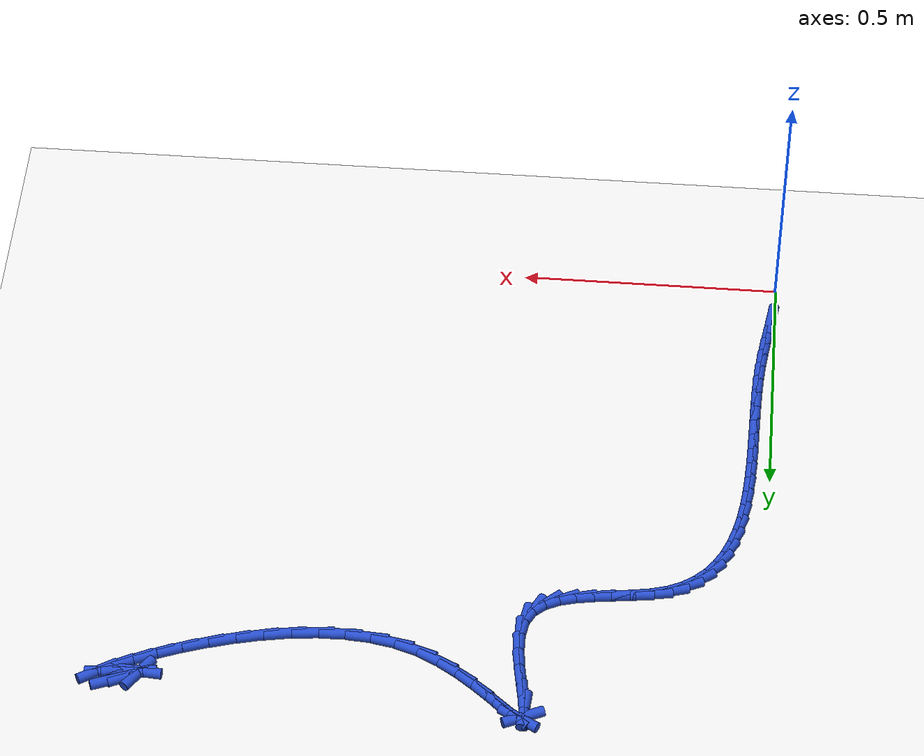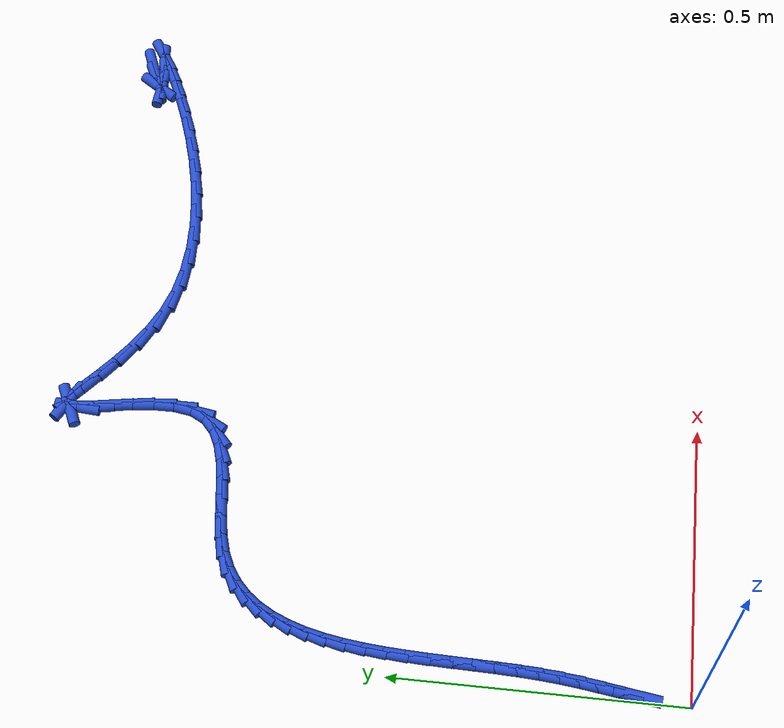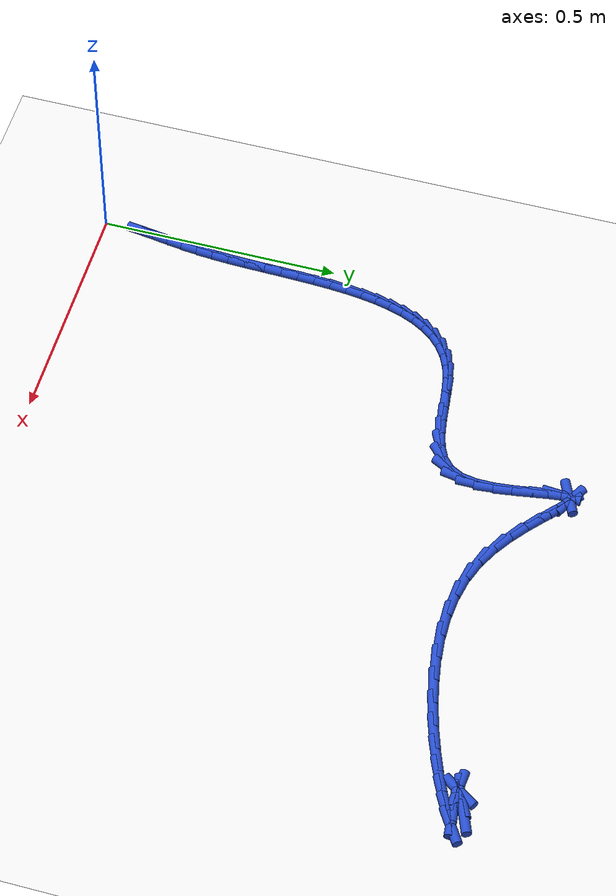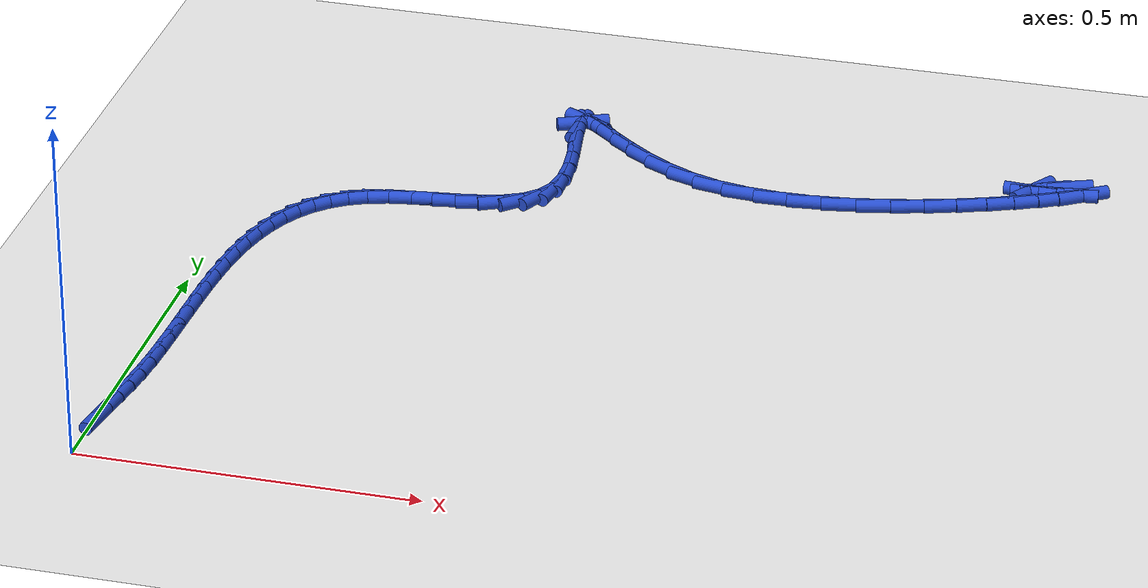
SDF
<sdf version="1.6">
 <world name="default">
  <model name="ground_plane">
   <static>1</static>
   <link name="link">
    <collision name="collision">
     <geometry><plane><normal>0 0 1</normal><size>100 100</size></plane></geometry>
     <surface><friction><ode><mu>100</mu><mu2>50</mu2></ode></friction></surface>
    </collision>
    <visual name="visual">
     <cast_shadows>0</cast_shadows>
     <geometry><plane><normal>0 0 1</normal><size>100 100</size></plane></geometry>
     <material>
      <script><uri>file://media/materials/scripts/gazebo.material</uri><name>Gazebo/WhiteGlow</name></script>
     </material>
    </visual>
   </link>
  </model>
  <model name="line">
   <link name="link_3">
    <pose>0.008167238286608368 0.08972064462820215 0.01 0 1.57 1.4271717780435933</pose>
    <collision name="collision">
     <geometry><cylinder><radius>0.01</radius><length>0.08</length></cylinder></geometry>
    </collision>
    <visual name="visual">
     <material>
      <script><name>Gazebo/Blue</name><uri>file://media/materials/scripts/gazebo.material</uri></script>
     </material>
     <geometry><cylinder><radius>0.01</radius><length>0.08</length></cylinder></geometry>
    </visual>
   </link>
   <link name="link_4">
    <pose>0.012558238925643204 0.12008290886443686 0.01 0 1.57 1.4232345956230243</pose>
    <collision name="collision">
     <geometry><cylinder><radius>0.01</radius><length>0.08</length></cylinder></geometry>
    </collision>
    <visual name="visual">
     <material>
      <script><name>Gazebo/Blue</name><uri>file://media/materials/scripts/gazebo.material</uri></script>
     </material>
     <geometry><cylinder><radius>0.01</radius><length>0.08</length></cylinder></geometry>
    </visual>
   </link>
   <link name="link_5">
    <pose>0.017158175630050312 0.15102928668816304 0.01 0 1.57 1.4320263609322825</pose>
    <collision name="collision">
     <geometry><cylinder><radius>0.01</radius><length>0.08</length></cylinder></geometry>
    </collision>
    <visual name="visual">
     <material>
      <script><name>Gazebo/Blue</name><uri>file://media/materials/scripts/gazebo.material</uri></script>
     </material>
     <geometry><cylinder><radius>0.01</radius><length>0.08</length></cylinder></geometry>
    </visual>
   </link>
   <link name="link_6">
    <pose>0.021591833676003463 0.18277363144382552 0.01 0 1.57 1.4525284898363768</pose>
    <collision name="collision">
     <geometry><cylinder><radius>0.01</radius><length>0.08</length></cylinder></geometry>
    </collision>
    <visual name="visual">
     <material>
      <script><name>Gazebo/Blue</name><uri>file://media/materials/scripts/gazebo.material</uri></script>
     </material>
     <geometry><cylinder><radius>0.01</radius><length>0.08</length></cylinder></geometry>
    </visual>
   </link>
   <link name="link_7">
    <pose>0.025483998339676395 0.21552979647586884 0.01 0 1.57 1.48289890299912</pose>
    <collision name="collision">
     <geometry><cylinder><radius>0.01</radius><length>0.08</length></cylinder></geometry>
    </collision>
    <visual name="visual">
     <material>
      <script><name>Gazebo/Blue</name><uri>file://media/materials/scripts/gazebo.material</uri></script>
     </material>
     <geometry><cylinder><radius>0.01</radius><length>0.08</length></cylinder></geometry>
    </visual>
   </link>
   <link name="link_8">
    <pose>0.028477421534843825 0.24949791605129953 0.01 0 1.57 1.5120531029433644</pose>
    <collision name="collision">
     <geometry><cylinder><radius>0.01</radius><length>0.08</length></cylinder></geometry>
    </collision>
    <visual name="visual">
     <material>
      <script><name>Gazebo/Blue</name><uri>file://media/materials/scripts/gazebo.material</uri></script>
     </material>
     <geometry><cylinder><radius>0.01</radius><length>0.08</length></cylinder></geometry>
    </visual>
   </link>
   <link name="link_9">
    <pose>0.03054340856325931 0.28462724558753594 0.01 0 1.57 1.5320240932115652</pose>
    <collision name="collision">
     <geometry><cylinder><radius>0.01</radius><length>0.08</length></cylinder></geometry>
    </collision>
    <visual name="visual">
     <material>
      <script><name>Gazebo/Blue</name><uri>file://media/materials/scripts/gazebo.material</uri></script>
     </material>
     <geometry><cylinder><radius>0.01</radius><length>0.08</length></cylinder></geometry>
    </visual>
   </link>
   <link name="link_10">
    <pose>0.031940696900608 0.32064756124605476 0.01 0 1.57 1.543587007439992</pose>
    <collision name="collision">
     <geometry><cylinder><radius>0.01</radius><length>0.08</length></cylinder></geometry>
    </collision>
    <visual name="visual">
     <material>
      <script><name>Gazebo/Blue</name><uri>file://media/materials/scripts/gazebo.material</uri></script>
     </material>
     <geometry><cylinder><radius>0.01</radius><length>0.08</length></cylinder></geometry>
    </visual>
   </link>
   <link name="link_11">
    <pose>0.03293772029558363 0.35728123524758354 0.01 0 1.57 1.547397672989311</pose>
    <collision name="collision">
     <geometry><cylinder><radius>0.01</radius><length>0.08</length></cylinder></geometry>
    </collision>
    <visual name="visual">
     <material>
      <script><name>Gazebo/Blue</name><uri>file://media/materials/scripts/gazebo.material</uri></script>
     </material>
     <geometry><cylinder><radius>0.01</radius><length>0.08</length></cylinder></geometry>
    </visual>
   </link>
   <link name="link_12">
    <pose>0.033802912496879944 0.3942506398128497 0.01 0 1.57 1.543747505559048</pose>
    <collision name="collision">
     <geometry><cylinder><radius>0.01</radius><length>0.08</length></cylinder></geometry>
    </collision>
    <visual name="visual">
     <material>
      <script><name>Gazebo/Blue</name><uri>file://media/materials/scripts/gazebo.material</uri></script>
     </material>
     <geometry><cylinder><radius>0.01</radius><length>0.08</length></cylinder></geometry>
    </visual>
   </link>
   <link name="link_13">
    <pose>0.03480470725319068 0.4312781471625806 0.01 0 1.57 1.5325941075325964</pose>
    <collision name="collision">
     <geometry><cylinder><radius>0.01</radius><length>0.08</length></cylinder></geometry>
    </collision>
    <visual name="visual">
     <material>
      <script><name>Gazebo/Blue</name><uri>file://media/materials/scripts/gazebo.material</uri></script>
     </material>
     <geometry><cylinder><radius>0.01</radius><length>0.08</length></cylinder></geometry>
    </visual>
   </link>
   <link name="link_14">
    <pose>0.03621153831320953 0.46808612951750345 0.01 0 1.57 1.513567407996557</pose>
    <collision name="collision">
     <geometry><cylinder><radius>0.01</radius><length>0.08</length></cylinder></geometry>
    </collision>
    <visual name="visual">
     <material>
      <script><name>Gazebo/Blue</name><uri>file://media/materials/scripts/gazebo.material</uri></script>
     </material>
     <geometry><cylinder><radius>0.01</radius><length>0.08</length></cylinder></geometry>
    </visual>
   </link>
   <link name="link_15">
    <pose>0.03829183942563027 0.5043969590983457 0.01 0 1.57 1.485954312328354</pose>
    <collision name="collision">
     <geometry><cylinder><radius>0.01</radius><length>0.08</length></cylinder></geometry>
    </collision>
    <visual name="visual">
     <material>
      <script><name>Gazebo/Blue</name><uri>file://media/materials/scripts/gazebo.material</uri></script>
     </material>
     <geometry><cylinder><radius>0.01</radius><length>0.08</length></cylinder></geometry>
    </visual>
   </link>
   <link name="link_16">
    <pose>0.041314044339146594 0.5399330081258348 0.01 0 1.57 1.4486665955391353</pose>
    <collision name="collision">
     <geometry><cylinder><radius>0.01</radius><length>0.08</length></cylinder></geometry>
    </collision>
    <visual name="visual">
     <material>
      <script><name>Gazebo/Blue</name><uri>file://media/materials/scripts/gazebo.material</uri></script>
     </material>
     <geometry><cylinder><radius>0.01</radius><length>0.08</length></cylinder></geometry>
    </visual>
   </link>
   <link name="link_17">
    <pose>0.04554658680245226 0.5744166488206981 0.01 0 1.57 1.4002024509286566</pose>
    <collision name="collision">
     <geometry><cylinder><radius>0.01</radius><length>0.08</length></cylinder></geometry>
    </collision>
    <visual name="visual">
     <material>
      <script><name>Gazebo/Blue</name><uri>file://media/materials/scripts/gazebo.material</uri></script>
     </material>
     <geometry><cylinder><radius>0.01</radius><length>0.08</length></cylinder></geometry>
    </visual>
   </link>
   <link name="link_18">
    <pose>0.051257900564240955 0.6075702534036629 0.01 0 1.57 1.3386262734749519</pose>
    <collision name="collision">
     <geometry><cylinder><radius>0.01</radius><length>0.08</length></cylinder></geometry>
    </collision>
    <visual name="visual">
     <material>
      <script><name>Gazebo/Blue</name><uri>file://media/materials/scripts/gazebo.material</uri></script>
     </material>
     <geometry><cylinder><radius>0.01</radius><length>0.08</length></cylinder></geometry>
    </visual>
   </link>
   <link name="link_19">
    <pose>0.058716419373206465 0.6391161940954565 0.01 0 1.57 1.2616210306121727</pose>
    <collision name="collision">
     <geometry><cylinder><radius>0.01</radius><length>0.08</length></cylinder></geometry>
    </collision>
    <visual name="visual">
     <material>
      <script><name>Gazebo/Blue</name><uri>file://media/materials/scripts/gazebo.material</uri></script>
     </material>
     <geometry><cylinder><radius>0.01</radius><length>0.08</length></cylinder></geometry>
    </visual>
   </link>
   <link name="link_20">
    <pose>0.06819057697804247 0.6687768431168065 0.01 0 1.57 1.1667193394554887</pose>
    <collision name="collision">
     <geometry><cylinder><radius>0.01</radius><length>0.08</length></cylinder></geometry>
    </collision>
    <visual name="visual">
     <material>
      <script><name>Gazebo/Blue</name><uri>file://media/materials/scripts/gazebo.material</uri></script>
     </material>
     <geometry><cylinder><radius>0.01</radius><length>0.08</length></cylinder></geometry>
    </visual>
   </link>
   <link name="link_21">
    <pose>0.07994880712744273 0.69627457268844 0.01 0 1.57 1.0518804976627412</pose>
    <collision name="collision">
     <geometry><cylinder><radius>0.01</radius><length>0.08</length></cylinder></geometry>
    </collision>
    <visual name="visual">
     <material>
      <script><name>Gazebo/Blue</name><uri>file://media/materials/scripts/gazebo.material</uri></script>
     </material>
     <geometry><cylinder><radius>0.01</radius><length>0.08</length></cylinder></geometry>
    </visual>
   </link>
   <link name="link_22">
    <pose>0.09425954357010101 0.7213317550310847 0.01 0 1.57 0.9165697139929242</pose>
    <collision name="collision">
     <geometry><cylinder><radius>0.01</radius><length>0.08</length></cylinder></geometry>
    </collision>
    <visual name="visual">
     <material>
      <script><name>Gazebo/Blue</name><uri>file://media/materials/scripts/gazebo.material</uri></script>
     </material>
     <geometry><cylinder><radius>0.01</radius><length>0.08</length></cylinder></geometry>
    </visual>
   </link>
   <link name="link_23">
    <pose>0.11139122005471093 0.7436707623654676 0.01 0 1.57 0.763213953933341</pose>
    <collision name="collision">
     <geometry><cylinder><radius>0.01</radius><length>0.08</length></cylinder></geometry>
    </collision>
    <visual name="visual">
     <material>
      <script><name>Gazebo/Blue</name><uri>file://media/materials/scripts/gazebo.material</uri></script>
     </material>
     <geometry><cylinder><radius>0.01</radius><length>0.08</length></cylinder></geometry>
    </visual>
   </link>
   <link name="link_24">
    <pose>0.13161227032996634 0.7630139669123164 0.01 0 1.57 0.598224311668231</pose>
    <collision name="collision">
     <geometry><cylinder><radius>0.01</radius><length>0.08</length></cylinder></geometry>
    </collision>
    <visual name="visual">
     <material>
      <script><name>Gazebo/Blue</name><uri>file://media/materials/scripts/gazebo.material</uri></script>
     </material>
     <geometry><cylinder><radius>0.01</radius><length>0.08</length></cylinder></geometry>
    </visual>
   </link>
   <link name="link_25">
    <pose>0.15519112814456099 0.7790837408923583 0.01 0 1.57 0.43127131217248316</pose>
    <collision name="collision">
     <geometry><cylinder><radius>0.01</radius><length>0.08</length></cylinder></geometry>
    </collision>
    <visual name="visual">
     <material>
      <script><name>Gazebo/Blue</name><uri>file://media/materials/scripts/gazebo.material</uri></script>
     </material>
     <geometry><cylinder><radius>0.01</radius><length>0.08</length></cylinder></geometry>
    </visual>
   </link>
   <link name="link_26">
    <pose>0.18239622724718832 0.7916024565263204 0.01 0 1.57 0.27638062341504416</pose>
    <collision name="collision">
     <geometry><cylinder><radius>0.01</radius><length>0.08</length></cylinder></geometry>
    </collision>
    <visual name="visual">
     <material>
      <script><name>Gazebo/Blue</name><uri>file://media/materials/scripts/gazebo.material</uri></script>
     </material>
     <geometry><cylinder><radius>0.01</radius><length>0.08</length></cylinder></geometry>
    </visual>
   </link>
   <link name="link_27">
    <pose>0.21339208726880013 0.8003941138655105 0.01 0 1.57 0.17221420535591028</pose>
    <collision name="collision">
     <geometry><cylinder><radius>0.01</radius><length>0.08</length></cylinder></geometry>
    </collision>
    <visual name="visual">
     <material>
      <script><name>Gazebo/Blue</name><uri>file://media/materials/scripts/gazebo.material</uri></script>
     </material>
     <geometry><cylinder><radius>0.01</radius><length>0.08</length></cylinder></geometry>
    </visual>
   </link>
   <link name="link_28">
    <pose>0.24730957408101964 0.8062936245814646 0.01 0 1.57 0.12434120389702073</pose>
    <collision name="collision">
     <geometry><cylinder><radius>0.01</radius><length>0.08</length></cylinder></geometry>
    </collision>
    <visual name="visual">
     <material>
      <script><name>Gazebo/Blue</name><uri>file://media/materials/scripts/gazebo.material</uri></script>
     </material>
     <geometry><cylinder><radius>0.01</radius><length>0.08</length></cylinder></geometry>
    </visual>
   </link>
   <link name="link_29">
    <pose>0.2826870991806359 0.8107153197176031 0.01 0 1.57 0.12279427348534303</pose>
    <collision name="collision">
     <geometry><cylinder><radius>0.01</radius><length>0.08</length></cylinder></geometry>
    </collision>
    <visual name="visual">
     <material>
      <script><name>Gazebo/Blue</name><uri>file://media/materials/scripts/gazebo.material</uri></script>
     </material>
     <geometry><cylinder><radius>0.01</radius><length>0.08</length></cylinder></geometry>
    </visual>
   </link>
   <link name="link_30">
    <pose>0.3180560626779988 0.8150803874413692 0.01 0 1.57 0.1674729885325822</pose>
    <collision name="collision">
     <geometry><cylinder><radius>0.01</radius><length>0.08</length></cylinder></geometry>
    </collision>
    <visual name="visual">
     <material>
      <script><name>Gazebo/Blue</name><uri>file://media/materials/scripts/gazebo.material</uri></script>
     </material>
     <geometry><cylinder><radius>0.01</radius><length>0.08</length></cylinder></geometry>
    </visual>
   </link>
   <link name="link_31">
    <pose>0.35194786468345846 0.8208100159202066 0.01 0 1.57 0.26852291199545897</pose>
    <collision name="collision">
     <geometry><cylinder><radius>0.01</radius><length>0.08</length></cylinder></geometry>
    </collision>
    <visual name="visual">
     <material>
      <script><name>Gazebo/Blue</name><uri>file://media/materials/scripts/gazebo.material</uri></script>
     </material>
     <geometry><cylinder><radius>0.01</radius><length>0.08</length></cylinder></geometry>
    </visual>
   </link>
   <link name="link_32">
    <pose>0.3828939053073651 0.8293253933215589 0.01 0 1.57 0.4471249925249048</pose>
    <collision name="collision">
     <geometry><cylinder><radius>0.01</radius><length>0.08</length></cylinder></geometry>
    </collision>
    <visual name="visual">
     <material>
      <script><name>Gazebo/Blue</name><uri>file://media/materials/scripts/gazebo.material</uri></script>
     </material>
     <geometry><cylinder><radius>0.01</radius><length>0.08</length></cylinder></geometry>
    </visual>
   </link>
   <link name="link_33">
    <pose>0.4094255846600687 0.8420477078128692 0.01 0 1.57 0.7265347541526008</pose>
    <collision name="collision">
     <geometry><cylinder><radius>0.01</radius><length>0.08</length></cylinder></geometry>
    </collision>
    <visual name="visual">
     <material>
      <script><name>Gazebo/Blue</name><uri>file://media/materials/scripts/gazebo.material</uri></script>
     </material>
     <geometry><cylinder><radius>0.01</radius><length>0.08</length></cylinder></geometry>
    </visual>
   </link>
   <link name="link_34">
    <pose>0.43007430285191917 0.8603981475615816 0.01 0 1.57 1.0880038774104452</pose>
    <collision name="collision">
     <geometry><cylinder><radius>0.01</radius><length>0.08</length></cylinder></geometry>
    </collision>
    <visual name="visual">
     <material>
      <script><name>Gazebo/Blue</name><uri>file://media/materials/scripts/gazebo.material</uri></script>
     </material>
     <geometry><cylinder><radius>0.01</radius><length>0.08</length></cylinder></geometry>
    </visual>
   </link>
   <link name="link_35">
    <pose>0.4433814949817677 0.885785542589817 0.01 0 1.57 1.398865195183392</pose>
    <collision name="collision">
     <geometry><cylinder><radius>0.01</radius><length>0.08</length></cylinder></geometry>
    </collision>
    <visual name="visual">
     <material>
      <script><name>Gazebo/Blue</name><uri>file://media/materials/scripts/gazebo.material</uri></script>
     </material>
     <geometry><cylinder><radius>0.01</radius><length>0.08</length></cylinder></geometry>
    </visual>
   </link>
   <link name="link_36">
    <pose>0.44901549329827745 0.9182309426807157 0.01 0 1.57 -1.564622373786883</pose>
    <collision name="collision">
     <geometry><cylinder><radius>0.01</radius><length>0.08</length></cylinder></geometry>
    </collision>
    <visual name="visual">
     <material>
      <script><name>Gazebo/Blue</name><uri>file://media/materials/scripts/gazebo.material</uri></script>
     </material>
     <geometry><cylinder><radius>0.01</radius><length>0.08</length></cylinder></geometry>
    </visual>
   </link>
   <link name="link_37">
    <pose>0.4487877630709946 0.9551161171326 0.01 0 1.57 -1.4660555701461704</pose>
    <collision name="collision">
     <geometry><cylinder><radius>0.01</radius><length>0.08</length></cylinder></geometry>
    </collision>
    <visual name="visual">
     <material>
      <script><name>Gazebo/Blue</name><uri>file://media/materials/scripts/gazebo.material</uri></script>
     </material>
     <geometry><cylinder><radius>0.01</radius><length>0.08</length></cylinder></geometry>
    </visual>
   </link>
   <link name="link_38">
    <pose>0.4447497726015449 0.9935272701469506 0.01 0 1.57 -1.4154862054456478</pose>
    <collision name="collision">
     <geometry><cylinder><radius>0.01</radius><length>0.08</length></cylinder></geometry>
    </collision>
    <visual name="visual">
     <material>
      <script><name>Gazebo/Blue</name><uri>file://media/materials/scripts/gazebo.material</uri></script>
     </material>
     <geometry><cylinder><radius>0.01</radius><length>0.08</length></cylinder></geometry>
    </visual>
   </link>
   <link name="link_39">
    <pose>0.4389529901915544 1.0305506059252485 0.01 0 1.57 -1.4041468484341566</pose>
    <collision name="collision">
     <geometry><cylinder><radius>0.01</radius><length>0.08</length></cylinder></geometry>
    </collision>
    <visual name="visual">
     <material>
      <script><name>Gazebo/Blue</name><uri>file://media/materials/scripts/gazebo.material</uri></script>
     </material>
     <geometry><cylinder><radius>0.01</radius><length>0.08</length></cylinder></geometry>
    </visual>
   </link>
   <link name="link_40">
    <pose>0.43344888414264904 1.0632723286689738 0.01 0 1.57 -1.447535016017089</pose>
    <collision name="collision">
     <geometry><cylinder><radius>0.01</radius><length>0.08</length></cylinder></geometry>
    </collision>
    <visual name="visual">
     <material>
      <script><name>Gazebo/Blue</name><uri>file://media/materials/scripts/gazebo.material</uri></script>
     </material>
     <geometry><cylinder><radius>0.01</radius><length>0.08</length></cylinder></geometry>
    </visual>
   </link>
   <link name="link_41">
    <pose>0.4302889227564543 1.0887786425796073 0.01 0 1.57 1.4906122280855019</pose>
    <collision name="collision">
     <geometry><cylinder><radius>0.01</radius><length>0.08</length></cylinder></geometry>
    </collision>
    <visual name="visual">
     <material>
      <script><name>Gazebo/Blue</name><uri>file://media/materials/scripts/gazebo.material</uri></script>
     </material>
     <geometry><cylinder><radius>0.01</radius><length>0.08</length></cylinder></geometry>
    </visual>
   </link>
   <link name="link_42">
    <pose>0.43152457212432804 1.1041557566662041 0.01 0 1.57 0.4227158396568619</pose>
    <collision name="collision">
     <geometry><cylinder><radius>0.01</radius><length>0.08</length></cylinder></geometry>
    </collision>
    <visual name="visual">
     <material>
      <script><name>Gazebo/Blue</name><uri>file://media/materials/scripts/gazebo.material</uri></script>
     </material>
     <geometry><cylinder><radius>0.01</radius><length>0.08</length></cylinder></geometry>
    </visual>
   </link>
   <link name="link_43">
    <pose>0.43877992605209093 1.107419461264373 0.01 0 1.57 -0.5030792888731542</pose>
    <collision name="collision">
     <geometry><cylinder><radius>0.01</radius><length>0.08</length></cylinder></geometry>
    </collision>
    <visual name="visual">
     <material>
      <script><name>Gazebo/Blue</name><uri>file://media/materials/scripts/gazebo.material</uri></script>
     </material>
     <geometry><cylinder><radius>0.01</radius><length>0.08</length></cylinder></geometry>
    </visual>
   </link>
   <link name="link_44">
    <pose>0.45205746561134585 1.100112731245654 0.01 0 1.57 -0.6863518998554949</pose>
    <collision name="collision">
     <geometry><cylinder><radius>0.01</radius><length>0.08</length></cylinder></geometry>
    </collision>
    <visual name="visual">
     <material>
      <script><name>Gazebo/Blue</name><uri>file://media/materials/scripts/gazebo.material</uri></script>
     </material>
     <geometry><cylinder><radius>0.01</radius><length>0.08</length></cylinder></geometry>
    </visual>
   </link>
   <link name="link_45">
    <pose>0.47097511954146076 1.0846149847401365 0.01 0 1.57 -0.7224639154252251</pose>
    <collision name="collision">
     <geometry><cylinder><radius>0.01</radius><length>0.08</length></cylinder></geometry>
    </collision>
    <visual name="visual">
     <material>
      <script><name>Gazebo/Blue</name><uri>file://media/materials/scripts/gazebo.material</uri></script>
     </material>
     <geometry><cylinder><radius>0.01</radius><length>0.08</length></cylinder></geometry>
    </visual>
   </link>
   <link name="link_46">
    <pose>0.4951508165818031 1.0633056398779106 0.01 0 1.57 -0.7054446363264925</pose>
    <collision name="collision">
     <geometry><cylinder><radius>0.01</radius><length>0.08</length></cylinder></geometry>
    </collision>
    <visual name="visual">
     <material>
      <script><name>Gazebo/Blue</name><uri>file://media/materials/scripts/gazebo.material</uri></script>
     </material>
     <geometry><cylinder><radius>0.01</radius><length>0.08</length></cylinder></geometry>
    </visual>
   </link>
   <link name="link_47">
    <pose>0.5242024854717409 1.0385641147890652 0.01 0 1.57 -0.6555083715265565</pose>
    <collision name="collision">
     <geometry><cylinder><radius>0.01</radius><length>0.08</length></cylinder></geometry>
    </collision>
    <visual name="visual">
     <material>
      <script><name>Gazebo/Blue</name><uri>file://media/materials/scripts/gazebo.material</uri></script>
     </material>
     <geometry><cylinder><radius>0.01</radius><length>0.08</length></cylinder></geometry>
    </visual>
   </link>
   <link name="link_48">
    <pose>0.557748054950642 1.0127698276036905 0.01 0 1.57 -0.5761945292690872</pose>
    <collision name="collision">
     <geometry><cylinder><radius>0.01</radius><length>0.08</length></cylinder></geometry>
    </collision>
    <visual name="visual">
     <material>
      <script><name>Gazebo/Blue</name><uri>file://media/materials/scripts/gazebo.material</uri></script>
     </material>
     <geometry><cylinder><radius>0.01</radius><length>0.08</length></cylinder></geometry>
    </visual>
   </link>
   <link name="link_49">
    <pose>0.5954054537578741 0.988302196451876 0.01 0 1.57 -0.46496074832424406</pose>
    <collision name="collision">
     <geometry><cylinder><radius>0.01</radius><length>0.08</length></cylinder></geometry>
    </collision>
    <visual name="visual">
     <material>
      <script><name>Gazebo/Blue</name><uri>file://media/materials/scripts/gazebo.material</uri></script>
     </material>
     <geometry><cylinder><radius>0.01</radius><length>0.08</length></cylinder></geometry>
    </visual>
   </link>
   <link name="link_50">
    <pose>0.6367926106328052 0.9675406394637116 0.01 0 1.57 -0.3218720947109697</pose>
    <collision name="collision">
     <geometry><cylinder><radius>0.01</radius><length>0.08</length></cylinder></geometry>
    </collision>
    <visual name="visual">
     <material>
      <script><name>Gazebo/Blue</name><uri>file://media/materials/scripts/gazebo.material</uri></script>
     </material>
     <geometry><cylinder><radius>0.01</radius><length>0.08</length></cylinder></geometry>
    </visual>
   </link>
   <link name="link_51">
    <pose>0.6814991036683175 0.9526324374947773 0.01 0 1.57 -0.18347761992087347</pose>
    <collision name="collision">
     <geometry><cylinder><radius>0.01</radius><length>0.08</length></cylinder></geometry>
    </collision>
    <visual name="visual">
     <material>
      <script><name>Gazebo/Blue</name><uri>file://media/materials/scripts/gazebo.material</uri></script>
     </material>
     <geometry><cylinder><radius>0.01</radius><length>0.08</length></cylinder></geometry>
    </visual>
   </link>
   <link name="link_52">
    <pose>0.7288842446442348 0.9438394331143486 0.01 0 1.57 -0.06747565027257112</pose>
    <collision name="collision">
     <geometry><cylinder><radius>0.01</radius><length>0.08</length></cylinder></geometry>
    </collision>
    <visual name="visual">
     <material>
      <script><name>Gazebo/Blue</name><uri>file://media/materials/scripts/gazebo.material</uri></script>
     </material>
     <geometry><cylinder><radius>0.01</radius><length>0.08</length></cylinder></geometry>
    </visual>
   </link>
   <link name="link_53">
    <pose>0.7781954266605198 0.940507070130811 0.01 0 1.57 0.029063087903408547</pose>
    <collision name="collision">
     <geometry><cylinder><radius>0.01</radius><length>0.08</length></cylinder></geometry>
    </collision>
    <visual name="visual">
     <material>
      <script><name>Gazebo/Blue</name><uri>file://media/materials/scripts/gazebo.material</uri></script>
     </material>
     <geometry><cylinder><radius>0.01</radius><length>0.08</length></cylinder></geometry>
    </visual>
   </link>
   <link name="link_54">
    <pose>0.828679298837078 0.9419747005866063 0.01 0 1.57 0.10970748252721775</pose>
    <collision name="collision">
     <geometry><cylinder><radius>0.01</radius><length>0.08</length></cylinder></geometry>
    </collision>
    <visual name="visual">
     <material>
      <script><name>Gazebo/Blue</name><uri>file://media/materials/scripts/gazebo.material</uri></script>
     </material>
     <geometry><cylinder><radius>0.01</radius><length>0.08</length></cylinder></geometry>
    </visual>
   </link>
   <link name="link_55">
    <pose>0.8795825102938156 0.9475816765241765 0.01 0 1.57 0.17777146263162247</pose>
    <collision name="collision">
     <geometry><cylinder><radius>0.01</radius><length>0.08</length></cylinder></geometry>
    </collision>
    <visual name="visual">
     <material>
      <script><name>Gazebo/Blue</name><uri>file://media/materials/scripts/gazebo.material</uri></script>
     </material>
     <geometry><cylinder><radius>0.01</radius><length>0.08</length></cylinder></geometry>
    </visual>
   </link>
   <link name="link_56">
    <pose>0.9301517101506377 0.956667349985964 0.01 0 1.57 0.23608152516571862</pose>
    <collision name="collision">
     <geometry><cylinder><radius>0.01</radius><length>0.08</length></cylinder></geometry>
    </collision>
    <visual name="visual">
     <material>
      <script><name>Gazebo/Blue</name><uri>file://media/materials/scripts/gazebo.material</uri></script>
     </material>
     <geometry><cylinder><radius>0.01</radius><length>0.08</length></cylinder></geometry>
    </visual>
   </link>
   <link name="link_57">
    <pose>0.9796335475274502 0.9685710730144109 0.01 0 1.57 0.2869983788057512</pose>
    <collision name="collision">
     <geometry><cylinder><radius>0.01</radius><length>0.08</length></cylinder></geometry>
    </collision>
    <visual name="visual">
     <material>
      <script><name>Gazebo/Blue</name><uri>file://media/materials/scripts/gazebo.material</uri></script>
     </material>
     <geometry><cylinder><radius>0.01</radius><length>0.08</length></cylinder></geometry>
    </visual>
   </link>
   <link name="link_58">
    <pose>1.0272746715441594 0.9826321976519592 0.01 0 1.57 0.33254366720948786</pose>
    <collision name="collision">
     <geometry><cylinder><radius>0.01</radius><length>0.08</length></cylinder></geometry>
    </collision>
    <visual name="visual">
     <material>
      <script><name>Gazebo/Blue</name><uri>file://media/materials/scripts/gazebo.material</uri></script>
     </material>
     <geometry><cylinder><radius>0.01</radius><length>0.08</length></cylinder></geometry>
    </visual>
   </link>
   <link name="link_59">
    <pose>1.0723217313206703 0.9981900759410511 0.01 0 1.57 0.37458248785209297</pose>
    <collision name="collision">
     <geometry><cylinder><radius>0.01</radius><length>0.08</length></cylinder></geometry>
    </collision>
    <visual name="visual">
     <material>
      <script><name>Gazebo/Blue</name><uri>file://media/materials/scripts/gazebo.material</uri></script>
     </material>
     <geometry><cylinder><radius>0.01</radius><length>0.08</length></cylinder></geometry>
    </visual>
   </link>
   <link name="link_60">
    <pose>1.114021375976889 1.0145840599241283 0.01 0 1.57 0.41508462988960904</pose>
    <collision name="collision">
     <geometry><cylinder><radius>0.01</radius><length>0.08</length></cylinder></geometry>
    </collision>
    <visual name="visual">
     <material>
      <script><name>Gazebo/Blue</name><uri>file://media/materials/scripts/gazebo.material</uri></script>
     </material>
     <geometry><cylinder><radius>0.01</radius><length>0.08</length></cylinder></geometry>
    </visual>
   </link>
   <link name="link_61">
    <pose>1.1516202546327217 1.0311535016436337 0.01 0 1.57 0.45658346132957645</pose>
    <collision name="collision">
     <geometry><cylinder><radius>0.01</radius><length>0.08</length></cylinder></geometry>
    </collision>
    <visual name="visual">
     <material>
      <script><name>Gazebo/Blue</name><uri>file://media/materials/scripts/gazebo.material</uri></script>
     </material>
     <geometry><cylinder><radius>0.01</radius><length>0.08</length></cylinder></geometry>
    </visual>
   </link>
   <link name="link_62">
    <pose>1.184365016408073 1.0472377531420085 0.01 0 1.57 0.5032081433869521</pose>
    <collision name="collision">
     <geometry><cylinder><radius>0.01</radius><length>0.08</length></cylinder></geometry>
    </collision>
    <visual name="visual">
     <material>
      <script><name>Gazebo/Blue</name><uri>file://media/materials/scripts/gazebo.material</uri></script>
     </material>
     <geometry><cylinder><radius>0.01</radius><length>0.08</length></cylinder></geometry>
    </visual>
   </link>
   <link name="link_63">
    <pose>1.2115023104228497 1.0621761664616955 0.01 0 1.57 0.563658285069248</pose>
    <collision name="collision">
     <geometry><cylinder><radius>0.01</radius><length>0.08</length></cylinder></geometry>
    </collision>
    <visual name="visual">
     <material>
      <script><name>Gazebo/Blue</name><uri>file://media/materials/scripts/gazebo.material</uri></script>
     </material>
     <geometry><cylinder><radius>0.01</radius><length>0.08</length></cylinder></geometry>
    </visual>
   </link>
   <link name="link_70">
    <pose>1.1835974568897007 1.0801916464040222 0.01 0 1.57 0.3724616160630466</pose>
    <collision name="collision">
     <geometry><cylinder><radius>0.01</radius><length>0.08</length></cylinder></geometry>
    </collision>
    <visual name="visual">
     <material>
      <script><name>Gazebo/Blue</name><uri>file://media/materials/scripts/gazebo.material</uri></script>
     </material>
     <geometry><cylinder><radius>0.01</radius><length>0.08</length></cylinder></geometry>
    </visual>
   </link>
   <link name="link_71">
    <pose>1.1541969793328282 1.068704944207645 0.01 0 1.57 0.44316154165610844</pose>
    <collision name="collision">
     <geometry><cylinder><radius>0.01</radius><length>0.08</length></cylinder></geometry>
    </collision>
    <visual name="visual">
     <material>
      <script><name>Gazebo/Blue</name><uri>file://media/materials/scripts/gazebo.material</uri></script>
     </material>
     <geometry><cylinder><radius>0.01</radius><length>0.08</length></cylinder></geometry>
    </visual>
   </link>
   <link name="link_72">
    <pose>1.1368426358532968 1.06046773032503 0.01 0 1.57 0.9736820072938392</pose>
    <collision name="collision">
     <geometry><cylinder><radius>0.01</radius><length>0.08</length></cylinder></geometry>
    </collision>
    <visual name="visual">
     <material>
      <script><name>Gazebo/Blue</name><uri>file://media/materials/scripts/gazebo.material</uri></script>
     </material>
     <geometry><cylinder><radius>0.01</radius><length>0.08</length></cylinder></geometry>
    </visual>
   </link>
   <link name="link_73">
    <pose>1.1340626772042415 1.0563790077112274 0.01 0 1.57 -0.07824138457204957</pose>
    <collision name="collision">
     <geometry><cylinder><radius>0.01</radius><length>0.08</length></cylinder></geometry>
    </collision>
    <visual name="visual">
     <material>
      <script><name>Gazebo/Blue</name><uri>file://media/materials/scripts/gazebo.material</uri></script>
     </material>
     <geometry><cylinder><radius>0.01</radius><length>0.08</length></cylinder></geometry>
    </visual>
   </link>
   <link name="link_74">
    <pose>1.1440644121384256 1.055594857353635 0.01 0 1.57 0.07908773419472392</pose>
    <collision name="collision">
     <geometry><cylinder><radius>0.01</radius><length>0.08</length></cylinder></geometry>
    </collision>
    <visual name="visual">
     <material>
      <script><name>Gazebo/Blue</name><uri>file://media/materials/scripts/gazebo.material</uri></script>
     </material>
     <geometry><cylinder><radius>0.01</radius><length>0.08</length></cylinder></geometry>
    </visual>
   </link>
   <link name="link_75">
    <pose>1.1650152772311972 1.0572552771508452 0.01 0 1.57 0.10750756838707232</pose>
    <collision name="collision">
     <geometry><cylinder><radius>0.01</radius><length>0.08</length></cylinder></geometry>
    </collision>
    <visual name="visual">
     <material>
      <script><name>Gazebo/Blue</name><uri>file://media/materials/scripts/gazebo.material</uri></script>
     </material>
     <geometry><cylinder><radius>0.01</radius><length>0.08</length></cylinder></geometry>
    </visual>
   </link>
   <link name="link_76">
    <pose>1.1950827090579046 1.06050026500145 0.01 0 1.57 0.10587838150922724</pose>
    <collision name="collision">
     <geometry><cylinder><radius>0.01</radius><length>0.08</length></cylinder></geometry>
    </collision>
    <visual name="visual">
     <material>
      <script><name>Gazebo/Blue</name><uri>file://media/materials/scripts/gazebo.material</uri></script>
     </material>
     <geometry><cylinder><radius>0.01</radius><length>0.08</length></cylinder></geometry>
    </visual>
   </link>
  </model>
 </world>
</sdf>
